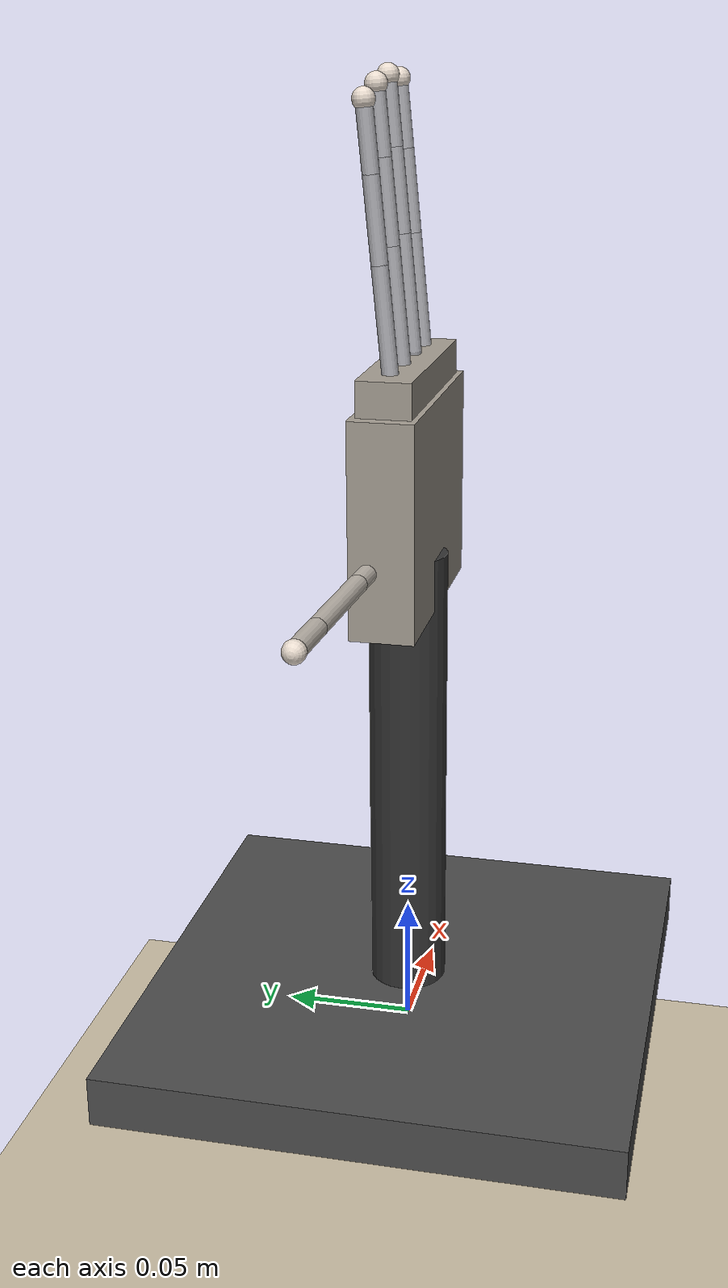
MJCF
<mujoco model="jodell_jack_hand">

  <!-- ==================== 编译选项 ==================== -->
  <compiler angle="radian" eulerseq="xyz"/>

  <option timestep="0.002" gravity="0 0 -9.81" integrator="implicit"/>

  <!-- ==================== 默认参数 ==================== -->
  <default>
    <joint damping="0.01" armature="0.001"/>
    <geom rgba="0.8 0.75 0.65 1" friction="1.0 0.005 0.001"/>

    <!-- 手指连杆默认样式 -->
    <default class="finger_link">
      <geom type="capsule" rgba="0.7 0.7 0.72 1" size="0.003"/>
    </default>

    <!-- 拇指连杆默认样式 -->
    <default class="thumb_link">
      <geom type="capsule" rgba="0.75 0.72 0.68 1" size="0.0035"/>
    </default>

    <!-- 关节默认参数 -->
    <default class="finger_joint">
      <joint damping="0.005" armature="0.0005" limited="true"/>
    </default>

    <default class="thumb_joint">
      <joint damping="0.008" armature="0.0008" limited="true"/>
    </default>

    <!-- 指尖接触面 -->
    <default class="fingertip">
      <geom type="sphere" size="0.004" rgba="0.9 0.85 0.8 1"
            friction="2.0 0.01 0.005" condim="4"/>
    </default>
  </default>

  <!-- ==================== 资产 ==================== -->
  <asset>
    <texture name="grid" type="2d" builtin="checker" width="512" height="512"
             rgb1="0.3 0.3 0.35" rgb2="0.35 0.35 0.4"/>
    <material name="grid_mat" texture="grid" texrepeat="8 8"/>
    <material name="palm_mat" rgba="0.65 0.62 0.58 1"/>
  </asset>

  <!-- ==================== 世界体 ==================== -->
  <worldbody>
    <!-- 地面 -->
    <geom name="floor" type="plane" size="0.5 0.5 0.01"
          material="grid_mat" pos="0 0 -0.1"/>

    <!-- 光源 -->
    <light pos="0.3 0.3 0.5" dir="-0.3 -0.3 -0.5" diffuse="0.8 0.8 0.8"/>
    <light pos="-0.3 0.3 0.5" dir="0.3 -0.3 -0.5" diffuse="0.4 0.4 0.4"/>

    <!-- ==================== 支撑架 ==================== -->
    <geom name="stand_base" type="box" size="0.1 0.1 0.01" pos="0 0 0.01" rgba="0.3 0.3 0.3 1"/>
    <geom name="stand_pole" type="cylinder" size="0.015 0.1" pos="0 0 0.1" rgba="0.2 0.2 0.2 1"/>

    <!-- ==================== 手掌基座 ==================== -->
    <!-- 手掌竖立：手指朝上(+Z)，掌心朝前(+Y) -->
    <body name="palm" pos="0 0 0.2">
      <!-- 移除 freejoint，固定在支架上 -->
      <inertial pos="0 0 0" mass="0.15"
                diaginertia="0.00005 0.00008 0.00003"/>
      <!-- 手掌几何体 -->
      <geom name="palm_body" type="box" size="0.045 0.012 0.04"
            pos="0 0 0.02" rgba="0.65 0.62 0.58 1"/>
      <geom name="palm_top" type="box" size="0.04 0.010 0.008"
            pos="0 0 0.065" rgba="0.65 0.62 0.58 1"/>

      <!--                    拇指 (Thumb) - 4 DOF                      -->
      <body name="thumb_base" pos="-0.035 0.005 0.005"
            euler="0 -1.5708 0">
        <inertial pos="0 0 0" mass="0.002"
                  diaginertia="0.0000001 0.0000001 0.0000001"/>
        <!-- q1: 绕 X 轴旋转 (屈伸) -->
        <joint name="thumb_q1" class="thumb_joint" type="hinge"
               axis="1 0 0" range="-1.6580 0" ref="0"/>

        <body name="thumb_q2_frame" pos="0 0 0" euler="0 0 3.14159265">
          <inertial pos="0 0 0" mass="0.002"
                    diaginertia="0.0000001 0.0000001 0.0000001"/>
          <!-- q2: 绕 Z 轴旋转 (内收外展) -->
          <joint name="thumb_q2" class="thumb_joint" type="hinge"
                 axis="0 0 1" range="-0.9599 0" ref="0"/>

          <!-- alpha1 固定偏角: Ry(-3.65°) -->
          <body name="thumb_link_OM" pos="0 0 0" euler="0 -0.0637 0">
            <inertial pos="0 0 0.01178" mass="0.008"
                      diaginertia="0.000001 0.000001 0.0000002"/>
            <!-- OM 连杆: L1 = 23.56mm, 沿 z 轴 -->
            <geom name="thumb_OM" class="thumb_link"
                  fromto="0 0 0  0 0 0.02356"/>

            <body name="thumb_link_MN" pos="0 0 0.02356">
              <!-- q3: 含 alpha2=8.22° 偏角, 绕局部 Y 轴旋转 -->
              <!-- 实际角 th3 = alpha2 + q3, 通过 ref 偏移 -->
              <joint name="thumb_q3" class="thumb_joint" type="hinge"
                     axis="0 1 0" range="-1.5010 0" ref="-0.1434"/>
              <inertial pos="0 0 0.02658" mass="0.012"
                        diaginertia="0.000003 0.000003 0.0000003"/>
              <!-- MN 连杆: L2 = 53.17mm -->
              <geom name="thumb_MN" class="thumb_link"
                    fromto="0 0 0  0 0 0.05317"/>

              <body name="thumb_link_NT" pos="0 0 0.05317">
                <!-- q4: 含 alpha3=-16.72° 偏角 -->
                <joint name="thumb_q4" class="thumb_joint" type="hinge"
                       axis="0 1 0" range="-1.2217 0" ref="0.2919"/>
                <inertial pos="0 0 0.01278" mass="0.006"
                          diaginertia="0.0000008 0.0000008 0.0000001"/>
                <!-- NT 连杆: L3 = 25.57mm -->
                <geom name="thumb_NT" class="thumb_link"
                      fromto="0 0 0  0 0 0.02557"/>

                <!-- T 点 (指尖) -->
                <body name="thumb_tip" pos="0 0 0.02557">
                  <geom name="thumb_tip_geom" class="fingertip"/>
                  <site name="thumb_tip_site" pos="0 0 0" size="0.002"/>
                </body>
              </body>
            </body>
          </body>
        </body>
      </body>

      <!--              食指 (Index) - 等效 3 DOF + 耦合                  -->
      <body name="index_base" pos="-0.027 0 0.068" euler="-0.0944 0 0">
        <inertial pos="0 0 0" mass="0.002"
                  diaginertia="0.0000001 0.0000001 0.0000001"/>
        <!-- q1: 屈伸 (绕 X 轴) -->
        <joint name="index_q1" class="finger_joint" type="hinge"
               axis="1 0 0" range="-1.5708 0.2618" ref="0"/>

        <body name="index_q2_frame" pos="0 0 0">
          <inertial pos="0 0 0" mass="0.002"
                    diaginertia="0.0000001 0.0000001 0.0000001"/>
          <!-- q2: 外展 (绕 Y 轴) -->
          <joint name="index_q2" class="finger_joint" type="hinge"
                 axis="0 1 0" range="-0.35 0.35" ref="0"/>

          <!-- PM 连杆: 42.39mm 沿 z 轴 -->
          <body name="index_link_PM" pos="0 0 0">
            <inertial pos="0 0 0.02119" mass="0.010"
                      diaginertia="0.000002 0.000002 0.0000003"/>
            <geom name="index_PM" class="finger_link"
                  fromto="0 0 0  0 0 0.04239"/>

            <body name="index_link_MN" pos="0 0 0.04239">
              <!-- q3: PIP 关节 (绕 X 轴) -->
              <joint name="index_q3" class="finger_joint" type="hinge"
                     axis="1 0 0" range="-1.5708 0.2618" ref="0"/>
              <inertial pos="0 0 0.015" mass="0.006"
                        diaginertia="0.0000008 0.0000008 0.0000001"/>
              <geom name="index_MN" class="finger_link"
                    fromto="0 0 0  0 0 0.03"/>

              <body name="index_link_NT" pos="0 0 0.03">
                <!-- q4: DIP 关节 (耦合到 q3) -->
                <joint name="index_q4" class="finger_joint" type="hinge"
                       axis="1 0 0" range="-1.5708 0.2618" ref="0"/>
                <inertial pos="0 0 0.01208" mass="0.004"
                          diaginertia="0.0000004 0.0000004 0.00000005"/>
                <geom name="index_NT" class="finger_link"
                      fromto="0 0 0  0 0 0.02416"/>

                <!-- T 点 (指尖) -->
                <body name="index_tip" pos="0 0 0.02416">
                  <geom name="index_tip_geom" class="fingertip"/>
                  <site name="index_tip_site" pos="0 0 0" size="0.002"/>
                </body>
              </body>
            </body>
          </body>
        </body>
      </body>

      <!--                      中指 (Middle)                            -->
      <body name="middle_base" pos="-0.009 0 0.072" euler="-0.0944 0 0">
        <inertial pos="0 0 0" mass="0.002"
                  diaginertia="0.0000001 0.0000001 0.0000001"/>
        <joint name="middle_q1" class="finger_joint" type="hinge"
               axis="1 0 0" range="-1.5708 0.2618" ref="0"/>
        <body name="middle_q2_frame" pos="0 0 0">
          <inertial pos="0 0 0" mass="0.002"
                    diaginertia="0.0000001 0.0000001 0.0000001"/>
          <joint name="middle_q2" class="finger_joint" type="hinge"
                 axis="0 1 0" range="-0.35 0.35" ref="0"/>
          <body name="middle_link_PM" pos="0 0 0">
            <inertial pos="0 0 0.02119" mass="0.010"
                      diaginertia="0.000002 0.000002 0.0000003"/>
            <geom name="middle_PM" class="finger_link"
                  fromto="0 0 0  0 0 0.04239"/>
            <body name="middle_link_MN" pos="0 0 0.04239">
              <joint name="middle_q3" class="finger_joint" type="hinge"
                     axis="1 0 0" range="-1.5708 0.2618" ref="0"/>
              <inertial pos="0 0 0.015" mass="0.006"
                        diaginertia="0.0000008 0.0000008 0.0000001"/>
              <geom name="middle_MN" class="finger_link"
                    fromto="0 0 0  0 0 0.03"/>
              <body name="middle_link_NT" pos="0 0 0.03">
                <joint name="middle_q4" class="finger_joint" type="hinge"
                       axis="1 0 0" range="-1.5708 0.2618" ref="0"/>
                <inertial pos="0 0 0.01208" mass="0.004"
                          diaginertia="0.0000004 0.0000004 0.00000005"/>
                <geom name="middle_NT" class="finger_link"
                      fromto="0 0 0  0 0 0.02416"/>
                <body name="middle_tip" pos="0 0 0.02416">
                  <geom name="middle_tip_geom" class="fingertip"/>
                  <site name="middle_tip_site" pos="0 0 0" size="0.002"/>
                </body>
              </body>
            </body>
          </body>
        </body>
      </body>

      <!--                      环指 (Ring)                              -->
      <body name="ring_base" pos="0.009 0 0.074" euler="-0.0944 0 0">
        <inertial pos="0 0 0" mass="0.002"
                  diaginertia="0.0000001 0.0000001 0.0000001"/>
        <joint name="ring_q1" class="finger_joint" type="hinge"
               axis="1 0 0" range="-1.5708 0.2618" ref="0"/>
        <body name="ring_q2_frame" pos="0 0 0">
          <inertial pos="0 0 0" mass="0.002"
                    diaginertia="0.0000001 0.0000001 0.0000001"/>
          <joint name="ring_q2" class="finger_joint" type="hinge"
                 axis="0 1 0" range="-0.35 0.35" ref="0"/>
          <body name="ring_link_PM" pos="0 0 0">
            <inertial pos="0 0 0.02119" mass="0.010"
                      diaginertia="0.000002 0.000002 0.0000003"/>
            <geom name="ring_PM" class="finger_link"
                  fromto="0 0 0  0 0 0.04239"/>
            <body name="ring_link_MN" pos="0 0 0.04239">
              <joint name="ring_q3" class="finger_joint" type="hinge"
                     axis="1 0 0" range="-1.5708 0.2618" ref="0"/>
              <inertial pos="0 0 0.015" mass="0.006"
                        diaginertia="0.0000008 0.0000008 0.0000001"/>
              <geom name="ring_MN" class="finger_link"
                    fromto="0 0 0  0 0 0.03"/>
              <body name="ring_link_NT" pos="0 0 0.03">
                <joint name="ring_q4" class="finger_joint" type="hinge"
                       axis="1 0 0" range="-1.5708 0.2618" ref="0"/>
                <inertial pos="0 0 0.01208" mass="0.004"
                          diaginertia="0.0000004 0.0000004 0.00000005"/>
                <geom name="ring_NT" class="finger_link"
                      fromto="0 0 0  0 0 0.02416"/>
                <body name="ring_tip" pos="0 0 0.02416">
                  <geom name="ring_tip_geom" class="fingertip"/>
                  <site name="ring_tip_site" pos="0 0 0" size="0.002"/>
                </body>
              </body>
            </body>
          </body>
        </body>
      </body>

      <!--                      小指 (Little)                            -->
      <body name="little_base" pos="0.027 0 0.072" euler="-0.0944 0 0">
        <inertial pos="0 0 0" mass="0.002"
                  diaginertia="0.0000001 0.0000001 0.0000001"/>
        <joint name="little_q1" class="finger_joint" type="hinge"
               axis="1 0 0" range="-1.5708 0.2618" ref="0"/>
        <body name="little_q2_frame" pos="0 0 0">
          <inertial pos="0 0 0" mass="0.002"
                    diaginertia="0.0000001 0.0000001 0.0000001"/>
          <joint name="little_q2" class="finger_joint" type="hinge"
                 axis="0 1 0" range="-0.35 0.35" ref="0"/>
          <body name="little_link_PM" pos="0 0 0">
            <inertial pos="0 0 0.02119" mass="0.010"
                      diaginertia="0.000002 0.000002 0.0000003"/>
            <geom name="little_PM" class="finger_link"
                  fromto="0 0 0  0 0 0.04239"/>
            <body name="little_link_MN" pos="0 0 0.04239">
              <joint name="little_q3" class="finger_joint" type="hinge"
                     axis="1 0 0" range="-1.5708 0.2618" ref="0"/>
              <inertial pos="0 0 0.015" mass="0.006"
                        diaginertia="0.0000008 0.0000008 0.0000001"/>
              <geom name="little_MN" class="finger_link"
                    fromto="0 0 0  0 0 0.03"/>
              <body name="little_link_NT" pos="0 0 0.03">
                <joint name="little_q4" class="finger_joint" type="hinge"
                       axis="1 0 0" range="-1.5708 0.2618" ref="0"/>
                <inertial pos="0 0 0.01208" mass="0.004"
                          diaginertia="0.0000004 0.0000004 0.00000005"/>
                <geom name="little_NT" class="finger_link"
                      fromto="0 0 0  0 0 0.02416"/>
                <body name="little_tip" pos="0 0 0.02416">
                  <geom name="little_tip_geom" class="fingertip"/>
                  <site name="little_tip_site" pos="0 0 0" size="0.002"/>
                </body>
              </body>
            </body>
          </body>
        </body>
      </body>

    </body><!-- end palm -->
  </worldbody>

  <!-- ==================== 等式约束 ==================== -->
  <equality>
    <!-- 食指 q3-q4 耦合 -->
    <joint name="index_q3q4_coupling" joint1="index_q4" joint2="index_q3"
           polycoef="-0.01462 1.27107 0.07658 0.05314 0.10674"/>

    <!-- 中指 q3-q4 耦合 -->
    <joint name="middle_q3q4_coupling" joint1="middle_q4" joint2="middle_q3"
           polycoef="-0.01462 1.27107 0.07658 0.05314 0.10674"/>

    <!-- 环指 q3-q4 耦合 -->
    <joint name="ring_q3q4_coupling" joint1="ring_q4" joint2="ring_q3"
           polycoef="-0.01462 1.27107 0.07658 0.05314 0.10674"/>

    <!-- 小指 q3-q4 耦合 -->
    <joint name="little_q3q4_coupling" joint1="little_q4" joint2="little_q3"
           polycoef="-0.01462 1.27107 0.07658 0.05314 0.10674"/>
  </equality>

  <!-- ==================== 驱动器 ==================== -->
  <actuator>
    <!-- 拇指驱动 (4个关节直接力矩驱动) -->
    <position name="thumb_act_q1" joint="thumb_q1" kp="2.0" ctrlrange="-1.658 0"/>
    <position name="thumb_act_q2" joint="thumb_q2" kp="2.0" ctrlrange="-0.960 0"/>
    <position name="thumb_act_q3" joint="thumb_q3" kp="1.5" ctrlrange="-1.501 0"/>
    <position name="thumb_act_q4" joint="thumb_q4" kp="1.0" ctrlrange="-1.222 0"/>

    <!-- 食指驱动 (q1, q2 由并联机构映射; q3 直接驱动; q4 由耦合约束) -->
    <position name="index_act_q1" joint="index_q1" kp="2.0" ctrlrange="-1.571 0.262"/>
    <position name="index_act_q2" joint="index_q2" kp="1.5" ctrlrange="-0.35 0.35"/>
    <position name="index_act_q3" joint="index_q3" kp="1.5" ctrlrange="-1.571 0.262"/>

    <!-- 中指驱动 -->
    <position name="middle_act_q1" joint="middle_q1" kp="2.0" ctrlrange="-1.571 0.262"/>
    <position name="middle_act_q2" joint="middle_q2" kp="1.5" ctrlrange="-0.35 0.35"/>
    <position name="middle_act_q3" joint="middle_q3" kp="1.5" ctrlrange="-1.571 0.262"/>

    <!-- 环指驱动 -->
    <position name="ring_act_q1" joint="ring_q1" kp="2.0" ctrlrange="-1.571 0.262"/>
    <position name="ring_act_q2" joint="ring_q2" kp="1.5" ctrlrange="-0.35 0.35"/>
    <position name="ring_act_q3" joint="ring_q3" kp="1.5" ctrlrange="-1.571 0.262"/>

    <!-- 小指驱动 -->
    <position name="little_act_q1" joint="little_q1" kp="2.0" ctrlrange="-1.571 0.262"/>
    <position name="little_act_q2" joint="little_q2" kp="1.5" ctrlrange="-0.35 0.35"/>
    <position name="little_act_q3" joint="little_q3" kp="1.5" ctrlrange="-1.571 0.262"/>
  </actuator>

  <!-- ==================== 传感器 ==================== -->
  <sensor>
    <!-- 指尖位置传感器 -->
    <framepos name="thumb_tip_pos" objtype="site" objname="thumb_tip_site"/>
    <framepos name="index_tip_pos" objtype="site" objname="index_tip_site"/>
    <framepos name="middle_tip_pos" objtype="site" objname="middle_tip_site"/>
    <framepos name="ring_tip_pos" objtype="site" objname="ring_tip_site"/>
    <framepos name="little_tip_pos" objtype="site" objname="little_tip_site"/>

    <!-- 关节角度传感器 -->
    <jointpos name="thumb_q1_pos" joint="thumb_q1"/>
    <jointpos name="thumb_q2_pos" joint="thumb_q2"/>
    <jointpos name="thumb_q3_pos" joint="thumb_q3"/>
    <jointpos name="thumb_q4_pos" joint="thumb_q4"/>
    <jointpos name="index_q1_pos" joint="index_q1"/>
    <jointpos name="index_q2_pos" joint="index_q2"/>
    <jointpos name="index_q3_pos" joint="index_q3"/>
    <jointpos name="index_q4_pos" joint="index_q4"/>
  </sensor>

</mujoco>
